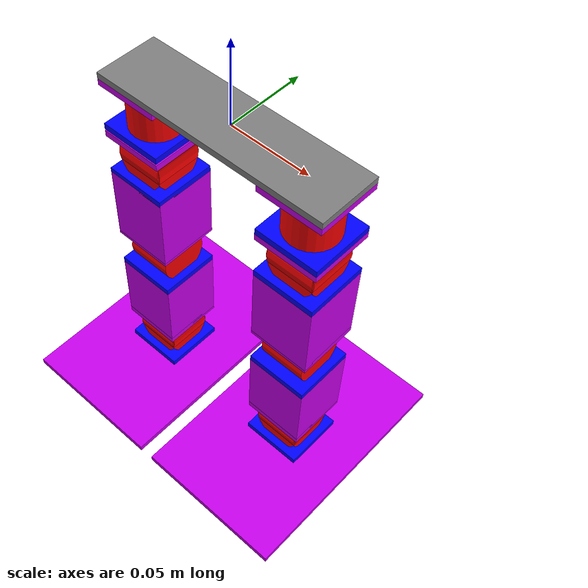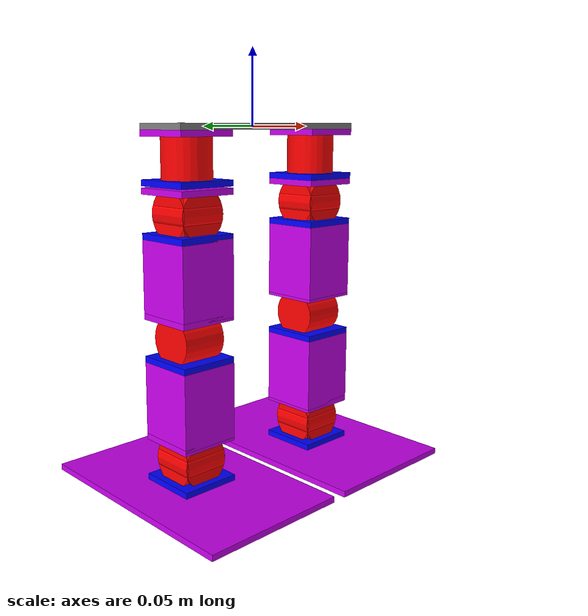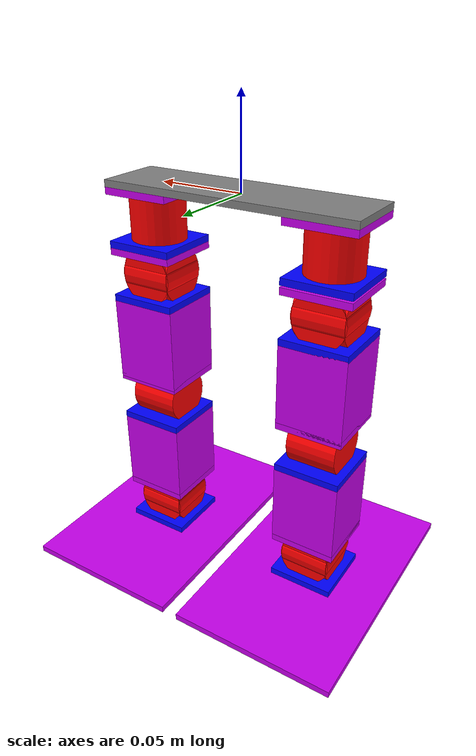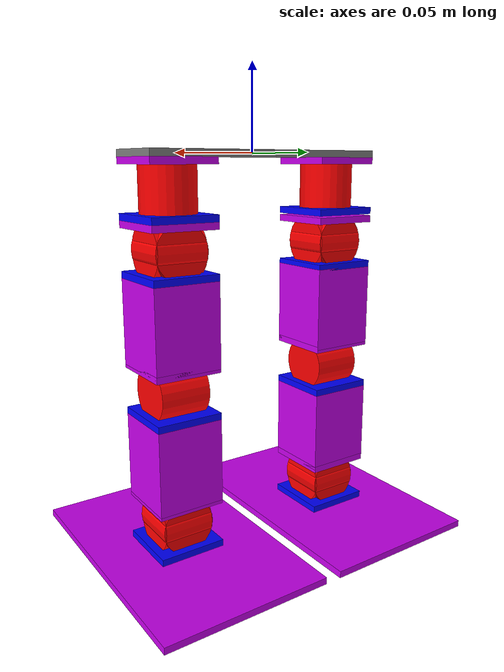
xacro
<?xml version="1.0"?>
<robot xmlns:xacro="http://ros.org/wiki/xacro" name="piernas">

<property name="pi" value="3.1415926535897931" />

<property name="porcentaje" value="1" />
<property name="porcentaje1x" value="1" />
<property name="porcentaje1y" value="1" />

<property name="servo_caja_x" value="0.04" />
<property name="servo_caja_y" value="0.04" />
<property name="servo_caja_z" value="0.004" />

<property name="alargador_caja_x" value="0.04" />
<property name="alargador_caja_y" value="0.04" />
<property name="alargador_caja_z" value="0.05" />

<property name="base_x" value="0.15" />
<property name="base_y" value="0.04" />
<property name="base_z" value="0.004" />
<property name="base_mass" value="0.35" /> <!-- en kg-->

<property name="masa_cilindro" value="0.35" />
<property name="radio" value="0.016" />
<property name="longitud" value="0.03" />
<property name="esfuerzoMax" value="10000000000000000" />
<property name="velMax" value="10000000000000000" />

<macro name="box_inertia" params="m x y z">
    <inertia  ixx="${50*m*(y*y+z*z)/12}" ixy = "0" ixz = "0"
              iyy="${50*m*(x*x+z*z)/12}" iyz = "0"
              izz="${50*m*(x*x+z*z)/12}" />
</macro>
<macro name="cylinder_inertia" params="m r h">
    <inertia  ixx="${50*m*(3*r*r+h*h)/12}" ixy = "0" ixz = "0"
              iyy="$50*{m*(3*r*r+h*h)/12}" iyz = "0"
              izz="${50*m*r*r/2}" />
</macro>

<link name="map"></link>

<joint name="map" type="fixed">
  <origin xyz="0 0 0" rpy="0 0 0" />
  <parent link="map"/>
  <child link="base_link"/>
</joint>

<link name="base_link">
    <inertial>
      <origin xyz="0 0 0" rpy="0 0 0" />
      <mass value="8" />
      <box_inertia  m="${2*base_mass}" x="${2*porcentaje*base_x}" y="${2*base_y}" z="${2*base_z}"/>
    </inertial>
    <visual>
      <origin xyz="0 0 0" rpy="0 0 0" />
      <geometry>
	<box size="${porcentaje*base_x} ${base_y} ${base_z}" />
      </geometry>
      <material name="">
        <color rgba="0.5 0.5 0.5 1" />
      </material>
    </visual>
    <collision>
      <origin xyz="0 0 0" rpy="0 0 0" />
      <geometry>
	<box size="${porcentaje*base_x} ${base_y} ${base_z}" />
      </geometry>
    </collision>
</link>

<gazebo reference="base_link">
    <material>Gazebo/Grey</material>
</gazebo>

<xacro:macro name="servo" params="side side2 x y z orientacion ejex ejey ejez">

<joint name="${side}_${side2}_joint" type="fixed">
    <origin xyz="${x} ${y} ${z}" rpy="0 0 0" />
    <parent link="${side}_link" />
    <child link="${side2}_link" />
    <axis xyz="0 0 0" />
    <limit lower = "-2.5" upper = "2.5" effort="${esfuerzoMax}" velocity="${velMax}" />
</joint>

<link name="${side2}_link">
    <inertial>
      <origin xyz="0 0 0" rpy="0 0 0" />
      <mass value="${base_mass}" />
      <box_inertia  m="${base_mass}" x="${servo_caja_x}" y="${servo_caja_y}" z="${servo_caja_z}"/>
    </inertial>
    <inertial>
      <origin xyz="0.11 2.7756E-17 1.3293E-50" rpy="0 0 0" />
      <mass value="${masa_cilindro}" />
      <cylinder_inertia  m="${masa_cilindro}" r="${radio}" h="${longitud}" />
    </inertial>
    <visual>
      <origin xyz="0 0 0" rpy="0 0 0" />
      <geometry>
	<box size="${servo_caja_x} ${servo_caja_y} ${servo_caja_z}" />
      </geometry>
      <material name=""> <color rgba="0.79216 0 0.93333 1" /> </material>
    </visual>
    <visual>
      <origin xyz="0 0 ${-radio+servo_caja_z/2}" rpy="${pi/2} 0 ${orientacion}" />
      <geometry> <cylinder radius="${radio}" length="${longitud}" /> </geometry>
      <material name=""> <color rgba="1 0 0 1" /> </material>
    </visual>
    <collision> <origin xyz="0 0 0" rpy="0 0 0" />
      <geometry>
	<box size="${servo_caja_x} ${servo_caja_y} ${servo_caja_z}" />
      </geometry>
    </collision>
    <collision>
      <origin xyz="0 0 ${-radio+servo_caja_z/2}" rpy="${pi/2} 0 ${orientacion}" />
      <geometry> <cylinder radius="${radio}" length="${longitud}" /> </geometry>
    </collision>
 </link>

<gazebo reference="${side2}_link">
    <material>Gazebo/Red</material>
</gazebo>

<joint name="cilinder_blue_${side2}_joint" type="revolute">
    <origin xyz="0 0 ${-radio+servo_caja_z/2}" rpy="0 0 0" />
    <parent link="${side2}_link" />
    <child link="blue_${side2}_link" />
    <axis xyz="${ejex} ${ejey} ${ejez}" />
    <limit lower = "-2.5" upper = "2.5" effort="${esfuerzoMax}" velocity="${velMax}" />
</joint>

<link name="blue_${side2}_link">
    <inertial>
      <origin xyz="0 0 0" rpy="0 0 0" />
      <mass value="${base_mass}" />
      <box_inertia  m="${base_mass}" x="${servo_caja_x}" y="${servo_caja_y}" z="${servo_caja_z}"/>
    </inertial>
    <visual>
      <origin xyz="0 0 ${-radio+servo_caja_z/2}" rpy="0 0 0" />
      <geometry> <box size="${servo_caja_x} ${servo_caja_y} ${servo_caja_z}" /> </geometry>
      <material
        name="">
        <color rgba="0 0 1 1" />
      </material>
    </visual>
    <collision>
      <origin xyz="0 0 ${-radio+servo_caja_z/2}" rpy="0 0 0" />
      <geometry> <box size="${servo_caja_x} ${servo_caja_y} ${servo_caja_z}" /> </geometry>
    </collision>
</link>

<transmission name="${side2}_Transmission">
			<type>transmission_interface/SimpleTransmission</type>
			<joint name="cilinder_blue_${side2}_joint">
				<hardwareInterface>EffortJointInterface</hardwareInterface>
			</joint>
			<actuator name="cilinder_blue_${side2}_joint_Motor">
				<hardwareInterface>EffortJointInterface</hardwareInterface>
				<mechanicalReduction>1</mechanicalReduction>
			</actuator>
		</transmission>

</xacro:macro>

<xacro:macro name="servoz" params="side side2 x y z orientacion ejex ejey ejez">

<joint name="${side}_${side2}_joint" type="fixed">
    <origin xyz="${x} ${y} ${z}" rpy="0 0 0" />
    <parent link="${side}_link" />
    <child link="${side2}_link" />
    <axis xyz="0 0 0" />
    <limit lower = "-2.5" upper = "2.5" effort="${esfuerzoMax}" velocity="${velMax}" />
</joint>

<link name="${side2}_link">
    <inertial>
      <origin xyz="0 0 0" rpy="0 0 0" />
      <mass value="${5*base_mass}" />
      <box_inertia  m="${base_mass}" x="${servo_caja_x}" y="${servo_caja_y}" z="${servo_caja_z}"/>
    </inertial>
    <inertial>
      <origin xyz="0.11 2.7756E-17 1.3293E-50" rpy="0 0 0" />
      <mass value="${masa_cilindro}" />
      <cylinder_inertia  m="${masa_cilindro}" r="${radio}" h="${longitud}" />
    </inertial>
    <visual>
      <origin xyz="0 0 0" rpy="0 0 0" />
      <geometry>
	<box size="${servo_caja_x} ${servo_caja_y} ${servo_caja_z}" />
      </geometry>
      <material name=""> <color rgba="0.79216 0 0.93333 1" /> </material>
    </visual>
    <visual>
      <origin xyz="0 0 ${-longitud/2+servo_caja_z/2}" rpy="0 0 ${orientacion}" />
      <geometry> <cylinder radius="${radio}" length="${longitud}" /> </geometry>
      <material name=""> <color rgba="1 0 0 1" /> </material>
    </visual>
    <collision> <origin xyz="0 0 0" rpy="0 0 0" />
      <geometry>
	<box size="${0.2*servo_caja_x} ${0.2*servo_caja_y} ${0.2*servo_caja_z}" />
      </geometry>
    </collision>
    <collision>
      <origin xyz="0 0 ${-longitud/2+servo_caja_z/2}" rpy="0 0 ${orientacion}" />
      <geometry> <cylinder radius="${0.2*radio}" length="${0.2*longitud}" /> </geometry>
    </collision>
 </link>

<joint name="cilinder_blue_${side2}_joint" type="revolute">
    <origin xyz="0 0 ${-longitud/2-servo_caja_z/2}" rpy="0 0 0" />
    <parent link="${side2}_link" />
    <child link="blue_${side2}_link" />
    <axis xyz="${ejex} ${ejey} ${ejez}" />
    <limit lower = "-2.5" upper = "2.5" effort="${esfuerzoMax}" velocity="${velMax}" />
</joint>

<link name="blue_${side2}_link">
    <inertial>
      <origin xyz="0 0 0" rpy="0 0 0" />
      <mass value="${5*base_mass}" />
      <box_inertia  m="${base_mass}" x="${servo_caja_x}" y="${servo_caja_y}" z="${servo_caja_z}"/>
    </inertial>
    <visual>
      <origin xyz="0 0 ${-longitud/2+servo_caja_z/2}" rpy="0 0 0" />
      <geometry> <box size="${servo_caja_x} ${servo_caja_y} ${servo_caja_z}" /> </geometry>
      <material name="">  <color rgba="0 0 1 1" /> </material>
    </visual>
    <collision>
       <origin xyz="0 0 ${-longitud/2+servo_caja_z/2}" rpy="0 0 0" />
      <geometry> <box size="${servo_caja_x} ${servo_caja_y} ${servo_caja_z}" /> </geometry>
    </collision>
</link>

<transmission name="${side2}_Transmission">
			<type>transmission_interface/SimpleTransmission</type>
			<joint name="cilinder_blue_${side2}_joint">
				<hardwareInterface>EffortJointInterface</hardwareInterface>
			</joint>
			<actuator name="cilinder_blue_${side2}_joint_Motor">
				<hardwareInterface>EffortJointInterface</hardwareInterface>
				<mechanicalReduction>1</mechanicalReduction>
			</actuator>
		</transmission>
</xacro:macro>

<xacro:macro name="servo2ejes" params="side side2 x y z orientacion ejex ejey ejez">

<joint name="${side}_${side2}_joint" type="fixed">
    <origin xyz="${x} ${y} ${z}" rpy="0 0 0" />
    <parent link="${side}_link" />
    <child link="${side2}_link" />
    <axis xyz="0 0 0" />
    <limit lower = "-2.5" upper = "2.5" effort="${esfuerzoMax}" velocity="${velMax}" />
</joint>

<link name="${side2}_link">
    <inertial>
      <origin xyz="0 0 0" rpy="0 0 0" />
      <mass value="${base_mass}" />
      <box_inertia  m="${base_mass}" x="${servo_caja_x}" y="${servo_caja_y}" z="${servo_caja_z}"/>
    </inertial>

    <inertial>
      <origin xyz="0.11 2.7756E-17 1.3293E-50" rpy="0 0 0" />
      <mass value="${masa_cilindro}" />
      <cylinder_inertia  m="${masa_cilindro}" r="${radio}" h="${longitud}" />
    </inertial>

    <visual>
      <origin xyz="0 0 0" rpy="0 0 0" />
      <geometry>
	<box size="${servo_caja_x} ${servo_caja_y} ${servo_caja_z}" />
      </geometry>
      <material name=""> <color rgba="0.79216 0 0.93333 1" /> </material>
    </visual>

    <visual>
      <origin xyz="0 0 ${-radio+servo_caja_z/2}" rpy="${pi/2} 0 ${orientacion+pi/2}" />
      <geometry> <cylinder radius="${radio}" length="${longitud}" /> </geometry>
      <material name=""> <color rgba="1 0 0 1" /> </material>
    </visual>

    <collision> <origin xyz="0 0 0" rpy="0 0 0" />
      <geometry>
	<box size="${servo_caja_x} ${servo_caja_y} ${servo_caja_z}" />
      </geometry>
    </collision>

    <collision>
      <origin xyz="0 0 ${-radio+servo_caja_z/2}" rpy="${pi/2} 0 ${orientacion}" />
      <geometry> <cylinder radius="${0.3*radio}" length="${0.3*longitud}" /> </geometry>
    </collision>

 </link>

<gazebo reference="${side2}_link">
    <material>Gazebo/Red</material>
</gazebo>

<joint name="cilinder_blue1_${side2}_joint" type="revolute">
    <origin xyz="0 0 ${-radio+servo_caja_z/2}" rpy="0 0 0" />
    <parent link="${side2}_link" />
    <child link="auxiliar${side2}" />
    <axis xyz="0 1 ${ejez}" />
    <limit lower = "-2.5" upper = "2.5" effort="${esfuerzoMax}" velocity="${velMax}" />
</joint>

<link name="auxiliar${side2}">
    <inertial>
      <origin xyz="0 0 0" rpy="0 0 0" />
      <mass value="${base_mass}" />
      <box_inertia  m="0" x="0" y="0" z="0"/>
    </inertial>
    <visual>
      <origin xyz="0 0 0" rpy="${pi/2} 0 ${orientacion}" />
      <geometry> <cylinder radius="${radio}" length="${longitud}" /> </geometry>
      <material name=""> <color rgba="1 0 0 1" /> </material>
    </visual>
    <collision>
      <origin xyz="0 0 0" rpy="${pi/2} 0 ${orientacion+pi/2}" />
      <geometry> <cylinder radius="${0.3* radio}" length="${0.3*longitud}" /> </geometry>
    </collision>
</link>

<joint name="cilinder_blue_${side2}_joint" type="revolute">
    <origin xyz="0 0 0" rpy="0 0 0" />
    <parent link="auxiliar${side2}" />
    <child link="blue_${side2}_link" />
    <axis xyz="1 0 ${ejez}" />
    <limit lower = "-2.5" upper = "2.5" effort="${esfuerzoMax}" velocity="${velMax}" />
</joint>

<link name="blue_${side2}_link">
    <inertial>
      <origin xyz="0 0 0" rpy="0 0 0" />
      <mass value="${base_mass}" />
      <box_inertia  m="${base_mass}" x="${servo_caja_x}" y="${servo_caja_y}" z="${servo_caja_z}"/>
    </inertial>
    <visual>
      <origin xyz="0 0 ${-radio+servo_caja_z/2}" rpy="0 0 0" />
      <geometry> <box size="${servo_caja_x} ${servo_caja_y} ${servo_caja_z}" /> </geometry>
      <material
        name="">
        <color rgba="0 0 1 1" />
      </material>
    </visual>
    <collision>
      <origin xyz="0 0 ${-radio+servo_caja_z/2}" rpy="0 0 0" />
      <geometry> <box size="${servo_caja_x} ${servo_caja_y} ${servo_caja_z}" /> </geometry>
    </collision>
</link>

<gazebo reference="$blue_{side2}_link">
    <material>Gazebo/Red</material>
</gazebo>

<transmission name="${side2}_Transmission">
			<type>transmission_interface/SimpleTransmission</type>
			<joint name="cilinder_blue_${side2}_joint">
				<hardwareInterface>EffortJointInterface</hardwareInterface>
			</joint>
			<actuator name="cilinder_blue_${side2}_joint_Motor">
				<hardwareInterface>EffortJointInterface</hardwareInterface>
				<mechanicalReduction>5000</mechanicalReduction>
			</actuator>
		</transmission>

<transmission name="${side2}_Transmission">
			<type>transmission_interface/SimpleTransmission</type>
			<joint name="cilinder_blue1_${side2}_joint">
				<hardwareInterface>EffortJointInterface</hardwareInterface>
			</joint>
			<actuator name="cilinder_blue1_${side2}_joint_Motor">
				<hardwareInterface>EffortJointInterface</hardwareInterface>
				<mechanicalReduction>5000</mechanicalReduction>
			</actuator>
		</transmission>
</xacro:macro>

<xacro:macro name="alargador" params="side side2 x y z orientacion ejex ejey ejez">

<joint name="${side}_${side2}_joint" type="fixed">
    <origin xyz="${x} ${y} ${z}" rpy="0 0 0" />
    <parent link="${side}_link" />
    <child link="${side2}_link" />
    <axis xyz="0 0 0" />
    <limit lower = "-2.5" upper = "2.5" effort="${esfuerzoMax}" velocity="${velMax}" />
</joint>

<link name="${side2}_link">

    <inertial>
      <origin xyz="0 0 0" rpy="0 0 0" />
      <mass value="${base_mass}" />
      <box_inertia  m="${base_mass}" x="${servo_caja_x}" y="${servo_caja_y}" z="${servo_caja_z}"/>
    </inertial>

    <visual>
      <origin xyz="0 0 0" rpy="0 0 0" />
      <geometry>
	<box size="${alargador_caja_x} ${alargador_caja_y} ${alargador_caja_z}" />
      </geometry>
      <material name=""> <color rgba="0.79216 0 0.93333 1" /> </material>
    </visual>

    <collision> <origin xyz="0 0 0" rpy="0 0 0" />
      <geometry>
	<box size="${alargador_caja_x} ${alargador_caja_y} ${alargador_caja_z}" />
      </geometry>
    </collision>
 </link>

<gazebo reference="${side2}_link">
    <material>Gazebo/Red</material>
</gazebo>

</xacro:macro>

<xacro:macro name="pie" params="side side2 x y z orientacion ejex ejey ejez">
   <joint name="${side}_${side2}_joint" type="fixed">
      <origin xyz="${x} ${y} ${z}" rpy="0 0 0" />
      <parent link="${side}_link" />
      <child link="${side2}_link" />
      <axis xyz="0 0 0" />
      <limit lower = "-2.5" upper = "2.5" effort="100" velocity="${velMax}" />
   </joint>
   <link name="${side2}_link">
    <inertial>
      <origin xyz="0 0 0" rpy="0 0 0" />
      <mass value="${base_mass}" />
      <box_inertia  m="${base_mass}" x="${2*servo_caja_x}" y="${2*servo_caja_y}" z="${servo_caja_z}"/>
    </inertial>
    <visual>
      <origin xyz="0 0 0" rpy="0 0 0" />
      <geometry>
	<box size="${2.5*servo_caja_x*porcentaje1x} ${4*servo_caja_y*porcentaje1y} ${servo_caja_z}" />
      </geometry>
      <material name=""> <color rgba="0.79216 0 0.93333 1" /> </material>
    </visual>
    <collision> <origin xyz="0 0 0" rpy="0 0 0" />
      <geometry>
	<box size="${3*servo_caja_x*porcentaje1x} ${4*servo_caja_y*porcentaje1y} ${servo_caja_z}" />
      </geometry>
    </collision>
 </link>

<gazebo reference="${side2}_link">
    <material>Gazebo/Orange</material>
</gazebo>

<gazebo reference="pie_der_link">
  <mu1 value="90000.0"/>
  <mu2 value="90000.0"/>
 <kp  value="100000.0" />
 <kd  value="10000.0" />
    <maxContacts>20</maxContacts>

</gazebo>
<gazebo reference="pie_izq_link">
  <mu1 value="90000.0"/>
  <mu2 value="90000.0"/>
  <kp  value="100000.0" />
  <kd  value="10000.0" />
    <maxContacts>20</maxContacts>

</gazebo>

</xacro:macro>

<gazebo>
        <plugin filename="libgazebo_ros_control.so" name="gazebo_ros_control">
            <robotNamespace>/piernas</robotNamespace>
            <robotSimType>gazebo_ros_control/DefaultRobotHWSim</robotSimType>
        </plugin>
    </gazebo>

<!-- Build robot model -->
    <xacro:servoz side="base" side2="box1_izq" x="${porcentaje*base_x/2-servo_caja_x/2}" y="0" z="${-base_z/2-servo_caja_z/2}" orientacion="${pi/2}" ejex="0"  ejey="0" ejez="1"/>
     <xacro:servo2ejes side="blue_box1_izq" side2="box2_izq" x="0" y="0" z="${-longitud/2-servo_caja_z/2}" orientacion="0" ejex="1" ejey="0" ejez="0"/>
    <xacro:alargador side="blue_box2_izq" side2="box3_izq" x="0" y="0" z="${-radio-alargador_caja_z/2}" orientacion="0" ejex="0" ejey="1" ejez="0"/>
    <xacro:servo side="box3_izq" side2="box4_izq" x="0" y="0" z="${-alargador_caja_z/2}" orientacion="${pi/2}" ejex="1" ejey="0" ejez="0"/>
    <xacro:alargador side="blue_box4_izq" side2="box5_izq" x="0" y="0" z="${-radio-alargador_caja_z/2}" orientacion="0" ejex="0" ejey="1" ejez="0"/>
    <xacro:servo2ejes side="box5_izq" side2="box6_izq" x="0" y="0" z="${-alargador_caja_z/2}" orientacion="0" ejex="1" ejey="0" ejez="0"/>
    <xacro:pie side="blue_box6_izq" side2="pie_izq" x="0" y="0" z="${-radio-servo_caja_z/2}" orientacion="0" ejex="0" ejey="0" ejez= "0"/>

    <xacro:servoz side="base" side2="box1_der" x="${-porcentaje*base_x/2+servo_caja_x/2}" y="0" z="${-base_z/2-servo_caja_z/2}" orientacion="${pi/2}" ejex="0"  ejey="0" ejez="1"/>
    <xacro:servo2ejes side="blue_box1_der" side2="box2_der" x="0" y="0" z="${-radio-servo_caja_z/2}" orientacion="0" ejex="1" ejey="0" ejez="0"/>
    <xacro:alargador side="blue_box2_der" side2="box3_der" x="0" y="0" z="${-longitud/2-alargador_caja_z/2}" orientacion="0" ejex="0" ejey="1" ejez="0"/>
    <xacro:servo side="box3_der" side2="box4_der" x="0" y="0" z="${-alargador_caja_z/2}" orientacion="${pi/2}" ejex="1" ejey="0" ejez="0"/>
    <xacro:alargador side="blue_box4_der" side2="box5_der" x="0" y="0" z="${-radio-alargador_caja_z/2}" orientacion="0" ejex="0" ejey="1" ejez="0"/>
    <xacro:servo2ejes side="box5_der" side2="box6_der" x="0" y="0" z="${-alargador_caja_z/2}" orientacion="0" ejex="1" ejey="0" ejez="0"/>
    <xacro:pie side="blue_box6_der" side2="pie_der" x="0" y="0" z="${-radio-servo_caja_z/2}" orientacion="0" ejex="0" ejey="0" ejez= "0"/>

</robot>
